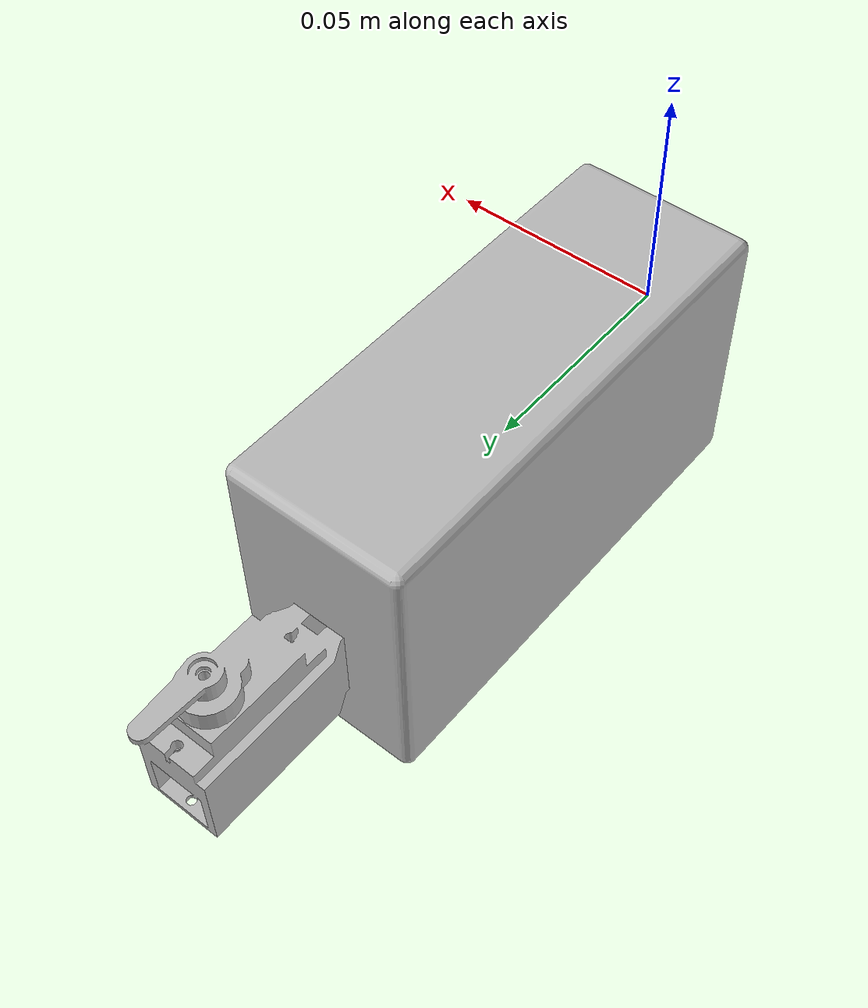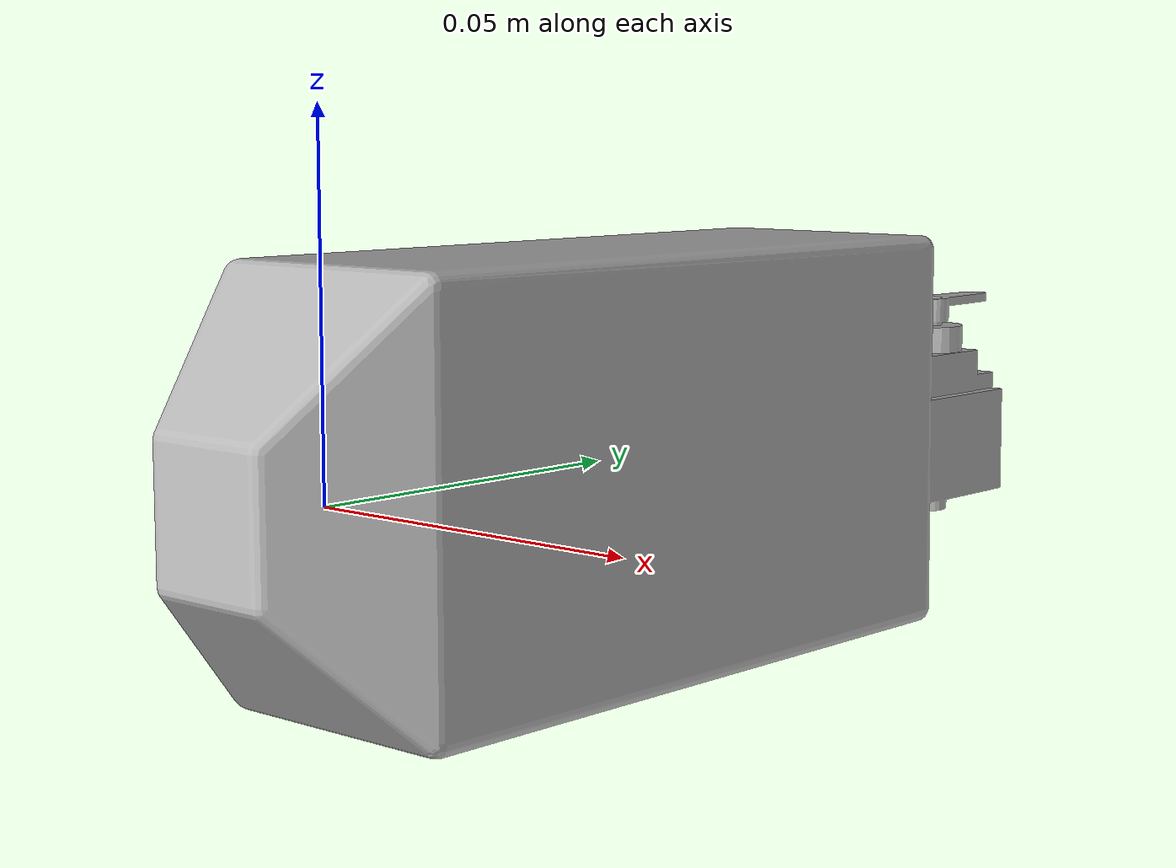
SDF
<sdf version='1.6'>
  <model name='fish'>
    <link name='base_link'>
      <pose frame=''>0 0 0 0 -0 0</pose>
      <inertial>
        <pose frame=''>0 -0.000186 0.10099 0 -0 0</pose>
        <mass>0.0153278</mass>
        <inertia>
          <ixx>4.87411e-06</ixx>
          <ixy>2.11123e-13</ixy>
          <ixz>2.70686e-15</ixz>
          <iyy>2.25933e-06</iyy>
          <iyz>-4.35276e-08</iyz>
          <izz>6.91219e-06</izz>
        </inertia>
      </inertial>
      <collision name='base_link_collision'>
        <pose frame=''>0 0 0 0 -0 0</pose>
        <geometry>
          <mesh>
            <scale>1 1 1</scale>
            <uri>model://fish/meshes/base_link.STL</uri>
          </mesh>
        </geometry>
      </collision>
      <visual name='base_link_visual'>
        <pose frame=''>0 0 0 0 -0 0</pose>
        <geometry>
          <mesh>
            <scale>1 1 1</scale>
            <uri>model://fish/meshes/base_link.STL</uri>
          </mesh>
        </geometry>
      </visual>
    </link>
  </model>
</sdf>
